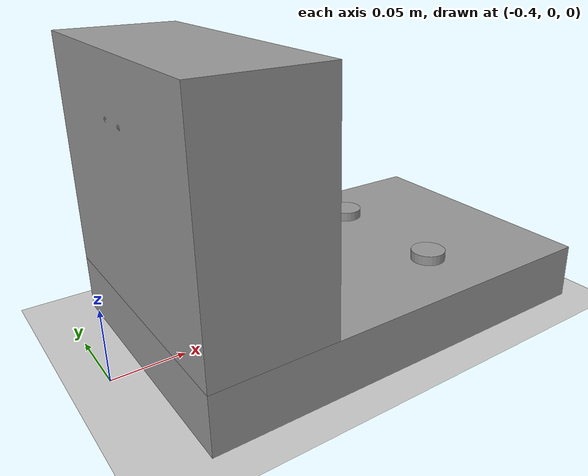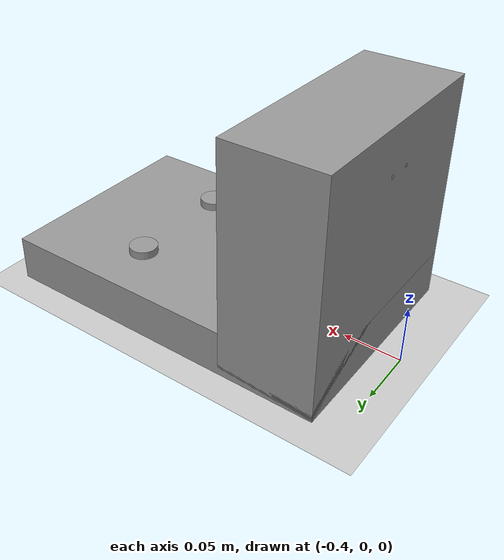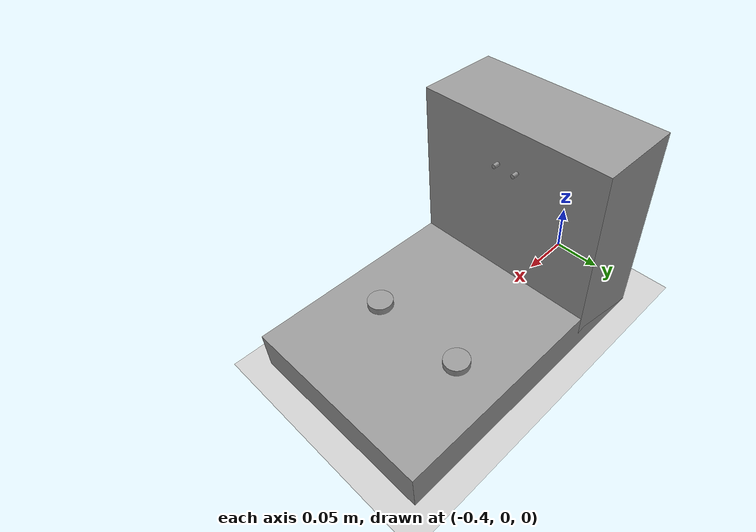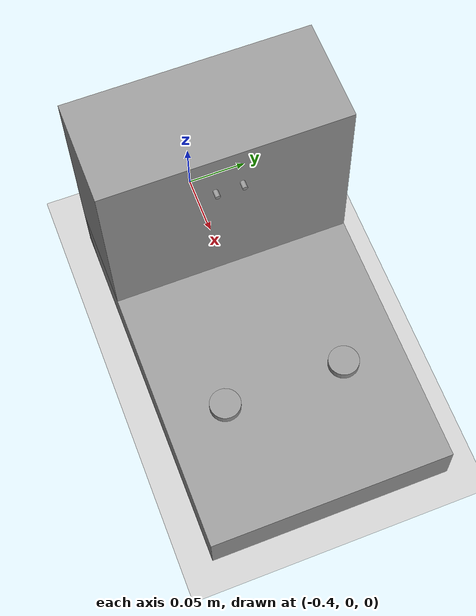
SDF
<sdf version="1.6">
 <world name="default">
  <model name="ground_plane">
   <static>1</static>
   <link name="link">
    <collision name="collision">
     <geometry><plane><normal>0 0 1</normal><size>100 100</size></plane></geometry>
     <surface><friction><ode><mu>100</mu><mu2>50</mu2></ode></friction></surface>
    </collision>
    <visual name="visual">
     <cast_shadows>0</cast_shadows>
     <geometry><plane><normal>0 0 1</normal><size>100 100</size></plane></geometry>
     <material>
      <script><uri>file://media/materials/scripts/gazebo.material</uri><name>Gazebo/Grey</name></script>
     </material>
    </visual>
   </link>
  </model>
  <model name="charging_station_0">
   <static>1</static>
   <link name="link_2">
    <pose>0 -0.001575 -0.028 0 -0 0</pose>
    <inertial>
     <mass>1</mass>
     <inertia>
      <ixx>0.166667</ixx>
      <ixy>0</ixy>
      <ixz>0</ixz>
      <iyy>0.166667</iyy>
      <iyz>0</iyz>
      <izz>0.166667</izz>
     </inertia>
    </inertial>
    <visual name="visual">
     <geometry><box><size>0.195 0.297 0.04</size></box></geometry>
     <material>
      <lighting>1</lighting>
      <script><uri>file://media/materials/scripts/gazebo.material</uri><name>Gazebo/Grey</name></script>
      <ambient>0.3 0.3 0.3 1</ambient>
      <diffuse>0.7 0.7 0.7 1</diffuse>
      <specular>0.01 0.01 0.01 1</specular>
      <emissive>0 0 0 1</emissive>
      <shader type="vertex"><normal_map>__default__</normal_map></shader>
     </material>
    </visual>
    <collision name="collision">
     <geometry><box><size>0.195 0.297 0.04</size></box></geometry>
     <surface>
      <friction>
       <ode><mu>1</mu><mu2>1</mu2><fdir1>0 0 0</fdir1><slip1>0</slip1><slip2>0</slip2></ode>
       <torsional>
        <coefficient>1</coefficient>
        <patch_radius>0</patch_radius>
        <surface_radius>0</surface_radius>
        <use_patch_radius>1</use_patch_radius>
        <ode><slip>0</slip></ode>
       </torsional>
      </friction>
      <bounce><restitution_coefficient>0</restitution_coefficient><threshold>1e+06</threshold></bounce>
      <contact>
       <collide_without_contact>0</collide_without_contact>
       <collide_without_contact_bitmask>1</collide_without_contact_bitmask>
       <collide_bitmask>1</collide_bitmask>
       <ode>
        <soft_cfm>0</soft_cfm>
        <soft_erp>0.2</soft_erp>
        <kp>1e+13</kp>
        <kd>1</kd>
        <max_vel>0.01</max_vel>
        <min_depth>0</min_depth>
       </ode>
       <bullet>
        <split_impulse>1</split_impulse>
        <split_impulse_penetration_threshold>-0.01</split_impulse_penetration_threshold>
        <soft_cfm>0</soft_cfm>
        <soft_erp>0.2</soft_erp>
        <kp>1e+13</kp>
        <kd>1</kd>
       </bullet>
      </contact>
     </surface>
    </collision>
   </link>
   <link name="link_1">
    <pose>-0.0105 0.101925 0.112 1.57079 -0 0</pose>
    <inertial>
     <mass>1</mass>
     <inertia><ixx>0.145833</ixx><ixy>0</ixy><ixz>0</ixz><iyy>0.145833</iyy><iyz>0</iyz><izz>0.125</izz></inertia>
    </inertial>
    <visual name="visual">
     <geometry><cylinder><radius>0.002</radius><length>0.09</length></cylinder></geometry>
     <material>
      <lighting>1</lighting>
      <script><uri>file://media/materials/scripts/gazebo.material</uri><name>Gazebo/Grey</name></script>
      <ambient>0.3 0.3 0.3 1</ambient>
      <diffuse>0.7 0.7 0.7 1</diffuse>
      <specular>0.01 0.01 0.01 1</specular>
      <emissive>0 0 0 1</emissive>
      <shader type="vertex"><normal_map>__default__</normal_map></shader>
     </material>
    </visual>
    <collision name="collision">
     <geometry><cylinder><radius>0.002</radius><length>0.09</length></cylinder></geometry>
     <surface>
      <friction>
       <ode><mu>1</mu><mu2>1</mu2><fdir1>0 0 0</fdir1><slip1>0</slip1><slip2>0</slip2></ode>
       <torsional>
        <coefficient>1</coefficient>
        <patch_radius>0</patch_radius>
        <surface_radius>0</surface_radius>
        <use_patch_radius>1</use_patch_radius>
        <ode><slip>0</slip></ode>
       </torsional>
      </friction>
      <bounce><restitution_coefficient>0</restitution_coefficient><threshold>1e+06</threshold></bounce>
      <contact>
       <collide_without_contact>0</collide_without_contact>
       <collide_without_contact_bitmask>1</collide_without_contact_bitmask>
       <collide_bitmask>1</collide_bitmask>
       <ode>
        <soft_cfm>0</soft_cfm>
        <soft_erp>0.2</soft_erp>
        <kp>1e+13</kp>
        <kd>1</kd>
        <max_vel>0.01</max_vel>
        <min_depth>0</min_depth>
       </ode>
       <bullet>
        <split_impulse>1</split_impulse>
        <split_impulse_penetration_threshold>-0.01</split_impulse_penetration_threshold>
        <soft_cfm>0</soft_cfm>
        <soft_erp>0.2</soft_erp>
        <kp>1e+13</kp>
        <kd>1</kd>
       </bullet>
      </contact>
     </surface>
    </collision>
   </link>
   <link name="link_1_clone">
    <pose>0.0105 0.101925 0.112 1.57079 -0 1e-06</pose>
    <inertial>
     <mass>1</mass>
     <inertia><ixx>0.145833</ixx><ixy>0</ixy><ixz>0</ixz><iyy>0.145833</iyy><iyz>0</iyz><izz>0.125</izz></inertia>
    </inertial>
    <visual name="visual">
     <geometry><cylinder><radius>0.002</radius><length>0.09</length></cylinder></geometry>
     <material>
      <lighting>1</lighting>
      <script><uri>file://media/materials/scripts/gazebo.material</uri><name>Gazebo/Grey</name></script>
      <ambient>0.3 0.3 0.3 1</ambient>
      <diffuse>0.7 0.7 0.7 1</diffuse>
      <specular>0.01 0.01 0.01 1</specular>
      <emissive>0 0 0 1</emissive>
      <shader type="vertex"><normal_map>__default__</normal_map></shader>
     </material>
    </visual>
    <collision name="collision">
     <geometry><cylinder><radius>0.002</radius><length>0.09</length></cylinder></geometry>
     <surface>
      <friction>
       <ode><mu>1</mu><mu2>1</mu2><fdir1>0 0 0</fdir1><slip1>0</slip1><slip2>0</slip2></ode>
       <torsional>
        <coefficient>1</coefficient>
        <patch_radius>0</patch_radius>
        <surface_radius>0</surface_radius>
        <use_patch_radius>1</use_patch_radius>
        <ode><slip>0</slip></ode>
       </torsional>
      </friction>
      <bounce><restitution_coefficient>0</restitution_coefficient><threshold>1e+06</threshold></bounce>
      <contact>
       <collide_without_contact>0</collide_without_contact>
       <collide_without_contact_bitmask>1</collide_without_contact_bitmask>
       <collide_bitmask>1</collide_bitmask>
       <ode>
        <soft_cfm>0</soft_cfm>
        <soft_erp>0.2</soft_erp>
        <kp>1e+13</kp>
        <kd>1</kd>
        <max_vel>0.01</max_vel>
        <min_depth>0</min_depth>
       </ode>
       <bullet>
        <split_impulse>1</split_impulse>
        <split_impulse_penetration_threshold>-0.01</split_impulse_penetration_threshold>
        <soft_cfm>0</soft_cfm>
        <soft_erp>0.2</soft_erp>
        <kp>1e+13</kp>
        <kd>1</kd>
       </bullet>
      </contact>
     </surface>
    </collision>
   </link>
   <link name="link_3">
    <pose>-0 0.104925 0.052 0 -0 0</pose>
    <inertial>
     <mass>1</mass>
     <inertia>
      <ixx>0.166667</ixx>
      <ixy>0</ixy>
      <ixz>0</ixz>
      <iyy>0.166667</iyy>
      <iyz>0</iyz>
      <izz>0.166667</izz>
     </inertia>
    </inertial>
    <visual name="visual">
     <geometry><box><size>0.195 0.084 0.2</size></box></geometry>
     <material>
      <lighting>1</lighting>
      <script><uri>file://media/materials/scripts/gazebo.material</uri><name>Gazebo/Grey</name></script>
      <ambient>0.3 0.3 0.3 1</ambient>
      <diffuse>0.7 0.7 0.7 1</diffuse>
      <specular>0.01 0.01 0.01 1</specular>
      <emissive>0 0 0 1</emissive>
      <shader type="vertex"><normal_map>__default__</normal_map></shader>
     </material>
    </visual>
    <collision name="collision">
     <geometry><box><size>0.195 0.084 0.2</size></box></geometry>
     <surface>
      <friction>
       <ode><mu>1</mu><mu2>1</mu2><fdir1>0 0 0</fdir1><slip1>0</slip1><slip2>0</slip2></ode>
       <torsional>
        <coefficient>1</coefficient>
        <patch_radius>0</patch_radius>
        <surface_radius>0</surface_radius>
        <use_patch_radius>1</use_patch_radius>
        <ode><slip>0</slip></ode>
       </torsional>
      </friction>
      <bounce><restitution_coefficient>0</restitution_coefficient><threshold>1e+06</threshold></bounce>
      <contact>
       <collide_without_contact>0</collide_without_contact>
       <collide_without_contact_bitmask>1</collide_without_contact_bitmask>
       <collide_bitmask>1</collide_bitmask>
       <ode>
        <soft_cfm>0</soft_cfm>
        <soft_erp>0.2</soft_erp>
        <kp>1e+13</kp>
        <kd>1</kd>
        <max_vel>0.01</max_vel>
        <min_depth>0</min_depth>
       </ode>
       <bullet>
        <split_impulse>1</split_impulse>
        <split_impulse_penetration_threshold>-0.01</split_impulse_penetration_threshold>
        <soft_cfm>0</soft_cfm>
        <soft_erp>0.2</soft_erp>
        <kp>1e+13</kp>
        <kd>1</kd>
       </bullet>
      </contact>
     </surface>
    </collision>
   </link>
   <link name="link_5">
    <pose>-0.049 -0.051675 -0.0245 0 -0 0</pose>
    <inertial>
     <mass>1</mass>
     <inertia><ixx>0.145833</ixx><ixy>0</ixy><ixz>0</ixz><iyy>0.145833</iyy><iyz>0</iyz><izz>0.125</izz></inertia>
    </inertial>
    <visual name="visual">
     <geometry><cylinder><radius>0.0123</radius><length>0.047</length></cylinder></geometry>
     <material>
      <lighting>1</lighting>
      <script><uri>file://media/materials/scripts/gazebo.material</uri><name>Gazebo/Grey</name></script>
      <ambient>0.3 0.3 0.3 1</ambient>
      <diffuse>0.7 0.7 0.7 1</diffuse>
      <specular>0.01 0.01 0.01 1</specular>
      <emissive>0 0 0 1</emissive>
      <shader type="vertex"><normal_map>__default__</normal_map></shader>
     </material>
    </visual>
    <collision name="collision">
     <geometry><cylinder><radius>0.0123</radius><length>0.047</length></cylinder></geometry>
     <surface>
      <friction>
       <ode><mu>1</mu><mu2>1</mu2><fdir1>0 0 0</fdir1><slip1>0</slip1><slip2>0</slip2></ode>
       <torsional>
        <coefficient>1</coefficient>
        <patch_radius>0</patch_radius>
        <surface_radius>0</surface_radius>
        <use_patch_radius>1</use_patch_radius>
        <ode><slip>0</slip></ode>
       </torsional>
      </friction>
      <bounce><restitution_coefficient>0</restitution_coefficient><threshold>1e+06</threshold></bounce>
      <contact>
       <collide_without_contact>0</collide_without_contact>
       <collide_without_contact_bitmask>1</collide_without_contact_bitmask>
       <collide_bitmask>1</collide_bitmask>
       <ode>
        <soft_cfm>0</soft_cfm>
        <soft_erp>0.2</soft_erp>
        <kp>1e+13</kp>
        <kd>1</kd>
        <max_vel>0.01</max_vel>
        <min_depth>0</min_depth>
       </ode>
       <bullet>
        <split_impulse>1</split_impulse>
        <split_impulse_penetration_threshold>-0.01</split_impulse_penetration_threshold>
        <soft_cfm>0</soft_cfm>
        <soft_erp>0.2</soft_erp>
        <kp>1e+13</kp>
        <kd>1</kd>
       </bullet>
      </contact>
     </surface>
    </collision>
   </link>
   <link name="link_5_clone">
    <pose>0.049 -0.051675 -0.0245 0 -0 0</pose>
    <inertial>
     <mass>1</mass>
     <inertia><ixx>0.145833</ixx><ixy>0</ixy><ixz>0</ixz><iyy>0.145833</iyy><iyz>0</iyz><izz>0.125</izz></inertia>
    </inertial>
    <visual name="visual">
     <geometry><cylinder><radius>0.0123</radius><length>0.047</length></cylinder></geometry>
     <material>
      <lighting>1</lighting>
      <script><uri>file://media/materials/scripts/gazebo.material</uri><name>Gazebo/Grey</name></script>
      <ambient>0.3 0.3 0.3 1</ambient>
      <diffuse>0.7 0.7 0.7 1</diffuse>
      <specular>0.01 0.01 0.01 1</specular>
      <emissive>0 0 0 1</emissive>
      <shader type="vertex"><normal_map>__default__</normal_map></shader>
     </material>
    </visual>
    <collision name="collision">
     <geometry><cylinder><radius>0.0123</radius><length>0.047</length></cylinder></geometry>
     <surface>
      <friction>
       <ode><mu>1</mu><mu2>1</mu2><fdir1>0 0 0</fdir1><slip1>0</slip1><slip2>0</slip2></ode>
       <torsional>
        <coefficient>1</coefficient>
        <patch_radius>0</patch_radius>
        <surface_radius>0</surface_radius>
        <use_patch_radius>1</use_patch_radius>
        <ode><slip>0</slip></ode>
       </torsional>
      </friction>
      <bounce><restitution_coefficient>0</restitution_coefficient><threshold>1e+06</threshold></bounce>
      <contact>
       <collide_without_contact>0</collide_without_contact>
       <collide_without_contact_bitmask>1</collide_without_contact_bitmask>
       <collide_bitmask>1</collide_bitmask>
       <ode>
        <soft_cfm>0</soft_cfm>
        <soft_erp>0.2</soft_erp>
        <kp>1e+13</kp>
        <kd>1</kd>
        <max_vel>0.01</max_vel>
        <min_depth>0</min_depth>
       </ode>
       <bullet>
        <split_impulse>1</split_impulse>
        <split_impulse_penetration_threshold>-0.01</split_impulse_penetration_threshold>
        <soft_cfm>0</soft_cfm>
        <soft_erp>0.2</soft_erp>
        <kp>1e+13</kp>
        <kd>1</kd>
       </bullet>
      </contact>
     </surface>
    </collision>
   </link>
   <joint name="link_2_JOINT_4" type="fixed">
    <parent>link_2</parent>
    <child>link_3</child>
    <physics>
     <ode><limit><cfm>0</cfm><erp>0.2</erp></limit><suspension><cfm>0</cfm><erp>0.2</erp></suspension></ode>
    </physics>
   </joint>
   <joint name="link_2_JOINT_6" type="fixed">
    <parent>link_2</parent>
    <child>link_5</child>
    <physics>
     <ode><limit><cfm>0</cfm><erp>0.2</erp></limit><suspension><cfm>0</cfm><erp>0.2</erp></suspension></ode>
    </physics>
   </joint>
   <joint name="link_2_JOINT_7" type="fixed">
    <parent>link_2</parent>
    <child>link_5_clone</child>
    <physics>
     <ode><limit><cfm>0</cfm><erp>0.2</erp></limit><suspension><cfm>0</cfm><erp>0.2</erp></suspension></ode>
    </physics>
   </joint>
   <joint name="link_3_JOINT_1" type="fixed">
    <parent>link_3</parent>
    <child>link_1</child>
    <physics>
     <ode><limit><cfm>0</cfm><erp>0.2</erp></limit><suspension><cfm>0</cfm><erp>0.2</erp></suspension></ode>
    </physics>
   </joint>
   <joint name="link_3_JOINT_2" type="fixed">
    <parent>link_3</parent>
    <child>link_1_clone</child>
    <physics>
     <ode><limit><cfm>0</cfm><erp>0.2</erp></limit><suspension><cfm>0</cfm><erp>0.2</erp></suspension></ode>
    </physics>
   </joint>
   <static>0</static>
   <pose>-0.232012 7.1e-05 0.04799 0 -0 1.57136</pose>
  </model>
 </world>
</sdf>
